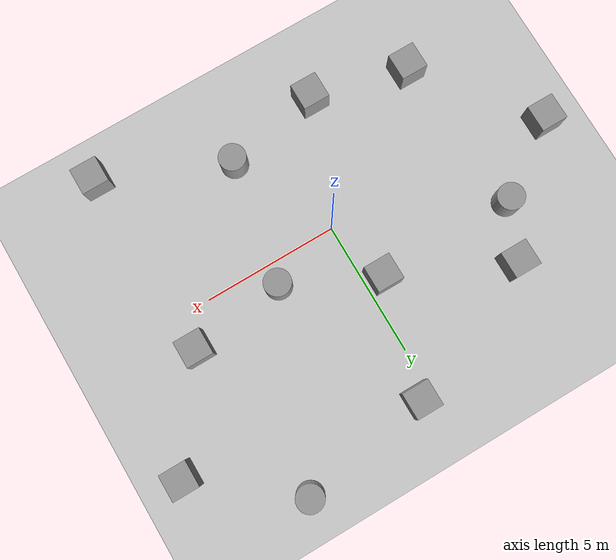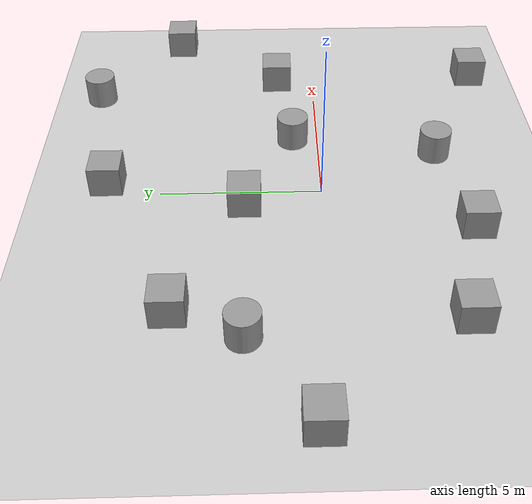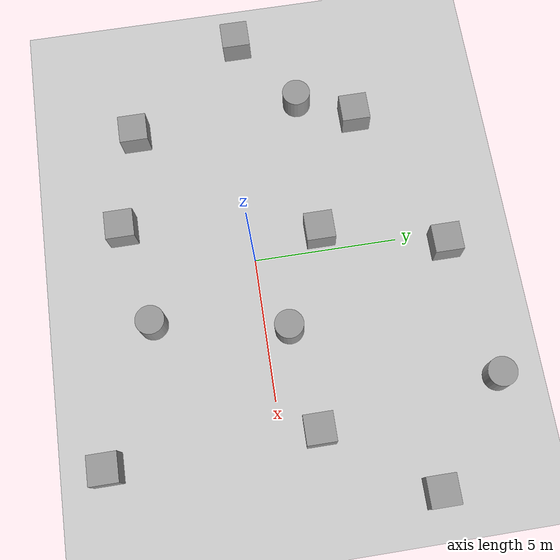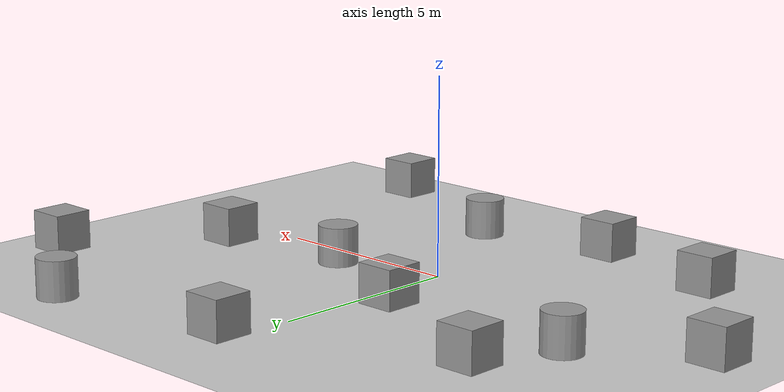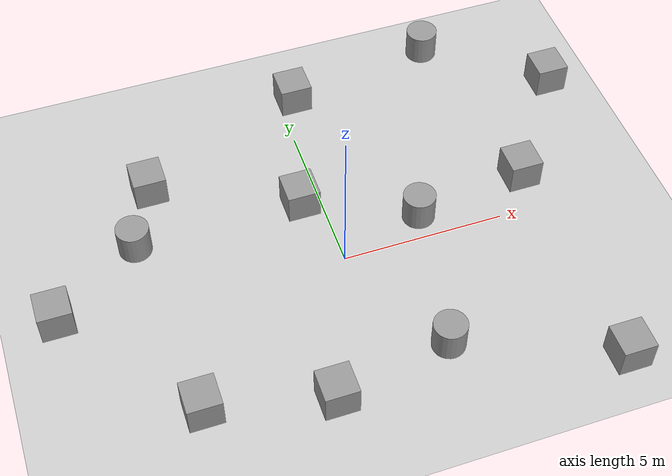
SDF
<sdf version="1.7">
 <world name="bumbleb_empty">
  <model name="ground_plane">
   <static>1</static>
   <link name="link">
    <collision name="collision">
     <geometry><plane><normal>0 0 1</normal><size>100 100</size></plane></geometry>
     <surface>
      <contact><collide_bitmask>65535</collide_bitmask></contact>
      <friction><ode><mu>100</mu><mu2>50</mu2></ode></friction>
     </surface>
    </collision>
    <visual name="visual">
     <cast_shadows>0</cast_shadows>
     <geometry><plane><normal>0 0 1</normal><size>100 100</size></plane></geometry>
     <material>
      <script><uri>file://media/materials/scripts/gazebo.material</uri><name>Gazebo/Grey</name></script>
     </material>
    </visual>
   </link>
  </model>
  <light name="sun" type="directional">
   <pose>0 0 10 0 -0 0</pose>
   <diffuse>0.8 0.8 0.8 1</diffuse>
   <specular>0.2 0.2 0.2 1</specular>
   <attenuation>
    <range>1000</range>
    <constant>0.9</constant>
    <linear>0.01</linear>
    <quadratic>0.001</quadratic>
   </attenuation>
   <direction>-0.5 0.1 -0.9</direction>
   <spot><inner_angle>0</inner_angle><outer_angle>0</outer_angle><falloff>0</falloff></spot>
  </light>
  <gravity>0 0 -9.8</gravity>
  <magnetic_field>6e-06 2.3e-05 -4.2e-05</magnetic_field>
  <atmosphere type="adiabatic"/>
  <physics type="ode">
   <max_step_size>0.001</max_step_size>
   <real_time_factor>1</real_time_factor>
   <real_time_update_rate>1000</real_time_update_rate>
  </physics>
  <scene><ambient>0.4 0.4 0.4 1</ambient><background>0.7 0.7 0.7 1</background><shadows>1</shadows></scene>
  <audio><device>default</device></audio>
  <spherical_coordinates>
   <surface_model>EARTH_WGS84</surface_model>
   <latitude_deg>0</latitude_deg>
   <longitude_deg>0</longitude_deg>
   <elevation>0</elevation>
   <heading_deg>0</heading_deg>
  </spherical_coordinates>
  <model name="unit_cylinder">
   <pose>-5.79504 2.35417 0.499992 -3e-06 3e-06 0</pose>
   <link name="link">
    <inertial>
     <mass>1</mass>
     <inertia><ixx>0.145833</ixx><ixy>0</ixy><ixz>0</ixz><iyy>0.145833</iyy><iyz>0</iyz><izz>0.125</izz></inertia>
    </inertial>
    <collision name="collision">
     <geometry><cylinder><radius>0.5</radius><length>1</length></cylinder></geometry>
    </collision>
    <visual name="visual">
     <geometry><cylinder><radius>0.5</radius><length>1</length></cylinder></geometry>
     <material>
      <script><name>Gazebo/Grey</name><uri>file://media/materials/scripts/gazebo.material</uri></script>
     </material>
    </visual>
   </link>
  </model>
  <model name="unit_box">
   <pose>-4.90188 4.3456 0.499995 -1e-05 -0 -0</pose>
   <link name="link">
    <inertial>
     <mass>1</mass>
     <inertia>
      <ixx>0.166667</ixx>
      <ixy>0</ixy>
      <ixz>0</ixz>
      <iyy>0.166667</iyy>
      <iyz>0</iyz>
      <izz>0.166667</izz>
     </inertia>
    </inertial>
    <collision name="collision"><geometry><box><size>1 1 1</size></box></geometry></collision>
    <visual name="visual">
     <geometry><box><size>1 1 1</size></box></geometry>
     <material>
      <script><name>Gazebo/Grey</name><uri>file://media/materials/scripts/gazebo.material</uri></script>
     </material>
    </visual>
   </link>
  </model>
  <model name="unit_box_0">
   <pose>-0.636205 2.37963 0.499995 0 1e-05 0</pose>
   <link name="link">
    <inertial>
     <mass>1</mass>
     <inertia>
      <ixx>0.166667</ixx>
      <ixy>0</ixy>
      <ixz>0</ixz>
      <iyy>0.166667</iyy>
      <iyz>0</iyz>
      <izz>0.166667</izz>
     </inertia>
    </inertial>
    <collision name="collision"><geometry><box><size>1 1 1</size></box></geometry></collision>
    <visual name="visual">
     <geometry><box><size>1 1 1</size></box></geometry>
     <material>
      <script><name>Gazebo/Grey</name><uri>file://media/materials/scripts/gazebo.material</uri></script>
     </material>
    </visual>
   </link>
  </model>
  <model name="unit_cylinder_0">
   <pose>2.64303 0.823066 0.499992 -3e-06 3e-06 0</pose>
   <link name="link">
    <inertial>
     <mass>1</mass>
     <inertia><ixx>0.145833</ixx><ixy>0</ixy><ixz>0</ixz><iyy>0.145833</iyy><iyz>0</iyz><izz>0.125</izz></inertia>
    </inertial>
    <collision name="collision">
     <geometry><cylinder><radius>0.5</radius><length>1</length></cylinder></geometry>
    </collision>
    <visual name="visual">
     <geometry><cylinder><radius>0.5</radius><length>1</length></cylinder></geometry>
     <material>
      <script><name>Gazebo/Grey</name><uri>file://media/materials/scripts/gazebo.material</uri></script>
     </material>
    </visual>
   </link>
  </model>
  <model name="unit_cylinder_1">
   <pose>1.78116 -3.76514 0.499998 3e-06 -3e-06 0</pose>
   <link name="link">
    <inertial>
     <mass>1</mass>
     <inertia><ixx>0.145833</ixx><ixy>0</ixy><ixz>0</ixz><iyy>0.145833</iyy><iyz>0</iyz><izz>0.125</izz></inertia>
    </inertial>
    <collision name="collision">
     <geometry><cylinder><radius>0.5</radius><length>1</length></cylinder></geometry>
    </collision>
    <visual name="visual">
     <geometry><cylinder><radius>0.5</radius><length>1</length></cylinder></geometry>
     <material>
      <script><name>Gazebo/Grey</name><uri>file://media/materials/scripts/gazebo.material</uri></script>
     </material>
    </visual>
   </link>
  </model>
  <model name="unit_box_1">
   <pose>-5.31347 -3.65586 0.499995 -1e-05 -0 -0</pose>
   <link name="link">
    <inertial>
     <mass>1</mass>
     <inertia>
      <ixx>0.166667</ixx>
      <ixy>0</ixy>
      <ixz>0</ixz>
      <iyy>0.166667</iyy>
      <iyz>0</iyz>
      <izz>0.166667</izz>
     </inertia>
    </inertial>
    <collision name="collision"><geometry><box><size>1 1 1</size></box></geometry></collision>
    <visual name="visual">
     <geometry><box><size>1 1 1</size></box></geometry>
     <material>
      <script><name>Gazebo/Grey</name><uri>file://media/materials/scripts/gazebo.material</uri></script>
     </material>
    </visual>
   </link>
  </model>
  <model name="unit_box_2">
   <pose>0.472973 6.6651 0.499995 0 1e-05 0</pose>
   <link name="link">
    <inertial>
     <mass>1</mass>
     <inertia>
      <ixx>0.166667</ixx>
      <ixy>0</ixy>
      <ixz>0</ixz>
      <iyy>0.166667</iyy>
      <iyz>0</iyz>
      <izz>0.166667</izz>
     </inertia>
    </inertial>
    <collision name="collision"><geometry><box><size>1 1 1</size></box></geometry></collision>
    <visual name="visual">
     <geometry><box><size>1 1 1</size></box></geometry>
     <material>
      <script><name>Gazebo/Grey</name><uri>file://media/materials/scripts/gazebo.material</uri></script>
     </material>
    </visual>
   </link>
  </model>
  <model name="unit_box_3">
   <pose>6.18029 1.28873 0.499995 -1e-05 -0 -0</pose>
   <link name="link">
    <inertial>
     <mass>1</mass>
     <inertia>
      <ixx>0.166667</ixx>
      <ixy>0</ixy>
      <ixz>0</ixz>
      <iyy>0.166667</iyy>
      <iyz>0</iyz>
      <izz>0.166667</izz>
     </inertia>
    </inertial>
    <collision name="collision"><geometry><box><size>1 1 1</size></box></geometry></collision>
    <visual name="visual">
     <geometry><box><size>1 1 1</size></box></geometry>
     <material>
      <script><name>Gazebo/Grey</name><uri>file://media/materials/scripts/gazebo.material</uri></script>
     </material>
    </visual>
   </link>
  </model>
  <model name="unit_box_4">
   <pose>6.35621 -5.73914 0.499995 0 1e-05 0</pose>
   <link name="link">
    <inertial>
     <mass>1</mass>
     <inertia>
      <ixx>0.166667</ixx>
      <ixy>0</ixy>
      <ixz>0</ixz>
      <iyy>0.166667</iyy>
      <iyz>0</iyz>
      <izz>0.166667</izz>
     </inertia>
    </inertial>
    <collision name="collision"><geometry><box><size>1 1 1</size></box></geometry></collision>
    <visual name="visual">
     <geometry><box><size>1 1 1</size></box></geometry>
     <material>
      <script><name>Gazebo/Grey</name><uri>file://media/materials/scripts/gazebo.material</uri></script>
     </material>
    </visual>
   </link>
  </model>
  <model name="unit_box_5">
   <pose>-1.76649 -4.47332 0.499995 -1e-05 -0 -0</pose>
   <link name="link">
    <inertial>
     <mass>1</mass>
     <inertia>
      <ixx>0.166667</ixx>
      <ixy>0</ixy>
      <ixz>0</ixz>
      <iyy>0.166667</iyy>
      <iyz>0</iyz>
      <izz>0.166667</izz>
     </inertia>
    </inertial>
    <collision name="collision"><geometry><box><size>1 1 1</size></box></geometry></collision>
    <visual name="visual">
     <geometry><box><size>1 1 1</size></box></geometry>
     <material>
      <script><name>Gazebo/Grey</name><uri>file://media/materials/scripts/gazebo.material</uri></script>
     </material>
    </visual>
   </link>
  </model>
  <model name="unit_box_6">
   <pose>-8.51426 0.457433 0.499995 0 1e-05 0</pose>
   <link name="link">
    <inertial>
     <mass>1</mass>
     <inertia>
      <ixx>0.166667</ixx>
      <ixy>0</ixy>
      <ixz>0</ixz>
      <iyy>0.166667</iyy>
      <iyz>0</iyz>
      <izz>0.166667</izz>
     </inertia>
    </inertial>
    <collision name="collision"><geometry><box><size>1 1 1</size></box></geometry></collision>
    <visual name="visual">
     <geometry><box><size>1 1 1</size></box></geometry>
     <material>
      <script><name>Gazebo/Grey</name><uri>file://media/materials/scripts/gazebo.material</uri></script>
     </material>
    </visual>
   </link>
  </model>
  <model name="unit_box_7">
   <pose>8.70075 4.83901 0.499995 -1e-05 -0 0</pose>
   <link name="link">
    <inertial>
     <mass>1</mass>
     <inertia>
      <ixx>0.166667</ixx>
      <ixy>0</ixy>
      <ixz>0</ixz>
      <iyy>0.166667</iyy>
      <iyz>0</iyz>
      <izz>0.166667</izz>
     </inertia>
    </inertial>
    <collision name="collision"><geometry><box><size>1 1 1</size></box></geometry></collision>
    <visual name="visual">
     <geometry><box><size>1 1 1</size></box></geometry>
     <material>
      <script><name>Gazebo/Grey</name><uri>file://media/materials/scripts/gazebo.material</uri></script>
     </material>
    </visual>
   </link>
  </model>
  <model name="unit_cylinder_2">
   <pose>5.3044 7.50599 0.499997 3e-06 4e-06 -0</pose>
   <link name="link">
    <inertial>
     <mass>1</mass>
     <inertia><ixx>0.145833</ixx><ixy>0</ixy><ixz>0</ixz><iyy>0.145833</iyy><iyz>0</iyz><izz>0.125</izz></inertia>
    </inertial>
    <collision name="collision">
     <geometry><cylinder><radius>0.5</radius><length>1</length></cylinder></geometry>
    </collision>
    <visual name="visual">
     <geometry><cylinder><radius>0.5</radius><length>1</length></cylinder></geometry>
     <material>
      <script><name>Gazebo/Grey</name><uri>file://media/materials/scripts/gazebo.material</uri></script>
     </material>
    </visual>
   </link>
  </model>
 </world>
</sdf>
